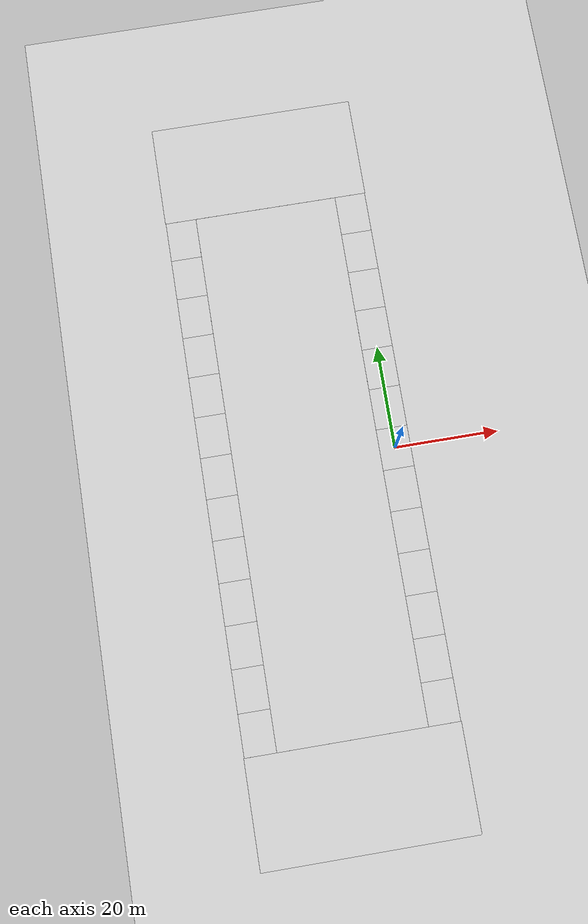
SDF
<sdf version="1.9">
 <world name="road">
  <physics type="ode">
   <max_step_size>0.004</max_step_size>
   <real_time_factor>1.0</real_time_factor>
   <real_time_update_rate>250</real_time_update_rate>
  </physics>
  <plugin name="gz::sim::systems::Physics" filename="gz-sim-physics-system"/>
  <plugin name="gz::sim::systems::UserCommands" filename="gz-sim-user-commands-system"/>
  <plugin name="gz::sim::systems::SceneBroadcaster" filename="gz-sim-scene-broadcaster-system"/>
  <plugin name="gz::sim::systems::Contact" filename="gz-sim-contact-system"/>
  <plugin name="gz::sim::systems::Imu" filename="gz-sim-imu-system"/>
  <plugin name="gz::sim::systems::AirPressure" filename="gz-sim-air-pressure-system"/>
  <plugin name="gz::sim::systems::ApplyLinkWrench" filename="gz-sim-apply-link-wrench-system"/>
  <plugin name="gz::sim::systems::NavSat" filename="gz-sim-navsat-system"/>
  <plugin name="gz::sim::systems::Sensors" filename="gz-sim-sensors-system">
   <render_engine>ogre2</render_engine>
  </plugin>
  <gravity>0 0 -9.8</gravity>
  <magnetic_field>6e-06 2.3e-05 -4.2e-05</magnetic_field>
  <atmosphere type="adiabatic"/>
  <scene>
   <grid>false</grid>
   <ambient>0.4 0.4 0.4 1</ambient>
   <background>0.7 0.7 0.7 1</background>
   <shadows>true</shadows>
  </scene>
  <model name="ground_plane">
   <static>true</static>
   <link name="link">
    <collision name="collision">
     <geometry><plane><normal>0 0 1</normal><size>1 1</size></plane></geometry>
    </collision>
    <visual name="visual">
     <geometry><plane><normal>0 0 1</normal><size>100 200</size></plane></geometry>
     <material>
      <ambient>0.8 0.8 0.8 1</ambient>
      <diffuse>0.8 0.8 0.8 1</diffuse>
      <specular>0.8 0.8 0.8 1</specular>
      <pbr><metal><albedo_map>grass-4k.png</albedo_map><normal_map>grass-4k.png</normal_map></metal></pbr>
     </material>
    </visual>
    <inertial>
     <mass>1</mass>
     <inertia><ixx>1</ixx><ixy>0</ixy><ixz>0</ixz><iyy>1</iyy><iyz>0</iyz><izz>1</izz></inertia>
    </inertial>
   </link>
  </model>
  <model name="road">
   <static>true</static>
   <link name="segment1">
    <visual name="visual">
     <geometry><plane><normal>0 0 1</normal><size>6 8</size></plane></geometry>
     <material>
      <ambient>0.8 0.8 0.8 1</ambient>
      <diffuse>0.8 0.8 0.8 1</diffuse>
      <specular>0.8 0.8 0.8 1</specular>
      <pbr><metal><albedo_map>road.jpg</albedo_map><normal_map>road.jpg</normal_map></metal></pbr>
     </material>
    </visual>
   </link>
   <link name="segment2">
    <visual name="visual">
     <geometry><plane><normal>0 0 1</normal><size>6 8</size></plane></geometry>
     <material>
      <ambient>0.8 0.8 0.8 1</ambient>
      <diffuse>0.8 0.8 0.8 1</diffuse>
      <specular>0.8 0.8 0.8 1</specular>
      <pbr><metal><albedo_map>road.jpg</albedo_map><normal_map>road.jpg</normal_map></metal></pbr>
     </material>
    </visual>
    <pose>0 8 0 0 -0 0</pose>
   </link>
   <link name="segment3">
    <visual name="visual">
     <geometry><plane><normal>0 0 1</normal><size>6 8</size></plane></geometry>
     <material>
      <ambient>0.8 0.8 0.8 1</ambient>
      <diffuse>0.8 0.8 0.8 1</diffuse>
      <specular>0.8 0.8 0.8 1</specular>
      <pbr><metal><albedo_map>road.jpg</albedo_map><normal_map>road.jpg</normal_map></metal></pbr>
     </material>
    </visual>
    <pose>0 -8 0 0 -0 0</pose>
   </link>
   <link name="segment4">
    <visual name="visual">
     <geometry><plane><normal>0 0 1</normal><size>6 8</size></plane></geometry>
     <material>
      <ambient>0.8 0.8 0.8 1</ambient>
      <diffuse>0.8 0.8 0.8 1</diffuse>
      <specular>0.8 0.8 0.8 1</specular>
      <pbr><metal><albedo_map>road.jpg</albedo_map><normal_map>road.jpg</normal_map></metal></pbr>
     </material>
    </visual>
    <pose>0 16 0 0 -0 0</pose>
   </link>
   <link name="segment5">
    <visual name="visual">
     <geometry><plane><normal>0 0 1</normal><size>6 8</size></plane></geometry>
     <material>
      <ambient>0.8 0.8 0.8 1</ambient>
      <diffuse>0.8 0.8 0.8 1</diffuse>
      <specular>0.8 0.8 0.8 1</specular>
      <pbr><metal><albedo_map>road.jpg</albedo_map><normal_map>road.jpg</normal_map></metal></pbr>
     </material>
    </visual>
    <pose>0 -16 0 0 -0 0</pose>
   </link>
   <link name="segment6">
    <visual name="visual">
     <geometry><plane><normal>0 0 1</normal><size>6 8</size></plane></geometry>
     <material>
      <ambient>0.8 0.8 0.8 1</ambient>
      <diffuse>0.8 0.8 0.8 1</diffuse>
      <specular>0.8 0.8 0.8 1</specular>
      <pbr><metal><albedo_map>road.jpg</albedo_map><normal_map>road.jpg</normal_map></metal></pbr>
     </material>
    </visual>
    <pose>0 24 0 0 -0 0</pose>
   </link>
   <link name="segment7">
    <visual name="visual">
     <geometry><plane><normal>0 0 1</normal><size>6 8</size></plane></geometry>
     <material>
      <ambient>0.8 0.8 0.8 1</ambient>
      <diffuse>0.8 0.8 0.8 1</diffuse>
      <specular>0.8 0.8 0.8 1</specular>
      <pbr><metal><albedo_map>road.jpg</albedo_map><normal_map>road.jpg</normal_map></metal></pbr>
     </material>
    </visual>
    <pose>0 -24 0 0 -0 0</pose>
   </link>
   <link name="segment8">
    <visual name="visual">
     <geometry><plane><normal>0 0 1</normal><size>6 8</size></plane></geometry>
     <material>
      <ambient>0.8 0.8 0.8 1</ambient>
      <diffuse>0.8 0.8 0.8 1</diffuse>
      <specular>0.8 0.8 0.8 1</specular>
      <pbr><metal><albedo_map>road.jpg</albedo_map><normal_map>road.jpg</normal_map></metal></pbr>
     </material>
    </visual>
    <pose>0 32 0 0 -0 0</pose>
   </link>
   <link name="segment9">
    <visual name="visual">
     <geometry><plane><normal>0 0 1</normal><size>6 8</size></plane></geometry>
     <material>
      <ambient>0.8 0.8 0.8 1</ambient>
      <diffuse>0.8 0.8 0.8 1</diffuse>
      <specular>0.8 0.8 0.8 1</specular>
      <pbr><metal><albedo_map>road.jpg</albedo_map><normal_map>road.jpg</normal_map></metal></pbr>
     </material>
    </visual>
    <pose>0 -32 0 0 -0 0</pose>
   </link>
   <link name="segment10">
    <visual name="visual">
     <geometry><plane><normal>0 0 1</normal><size>6 8</size></plane></geometry>
     <material>
      <ambient>0.8 0.8 0.8 1</ambient>
      <diffuse>0.8 0.8 0.8 1</diffuse>
      <specular>0.8 0.8 0.8 1</specular>
      <pbr><metal><albedo_map>road.jpg</albedo_map><normal_map>road.jpg</normal_map></metal></pbr>
     </material>
    </visual>
    <pose>0 40 0 0 -0 0</pose>
   </link>
   <link name="segment11">
    <visual name="visual">
     <geometry><plane><normal>0 0 1</normal><size>6 8</size></plane></geometry>
     <material>
      <ambient>0.8 0.8 0.8 1</ambient>
      <diffuse>0.8 0.8 0.8 1</diffuse>
      <specular>0.8 0.8 0.8 1</specular>
      <pbr><metal><albedo_map>road.jpg</albedo_map><normal_map>road.jpg</normal_map></metal></pbr>
     </material>
    </visual>
    <pose>0 -40 0 0 -0 0</pose>
   </link>
   <link name="segment12">
    <visual name="visual">
     <geometry><plane><normal>0 0 1</normal><size>6 8</size></plane></geometry>
     <material>
      <ambient>0.8 0.8 0.8 1</ambient>
      <diffuse>0.8 0.8 0.8 1</diffuse>
      <specular>0.8 0.8 0.8 1</specular>
      <pbr><metal><albedo_map>road.jpg</albedo_map><normal_map>road.jpg</normal_map></metal></pbr>
     </material>
    </visual>
    <pose>0 48 0 0 -0 0</pose>
   </link>
   <link name="segment13">
    <visual name="visual">
     <geometry><plane><normal>0 0 1</normal><size>6 8</size></plane></geometry>
     <material>
      <ambient>0.8 0.8 0.8 1</ambient>
      <diffuse>0.8 0.8 0.8 1</diffuse>
      <specular>0.8 0.8 0.8 1</specular>
      <pbr><metal><albedo_map>road.jpg</albedo_map><normal_map>road.jpg</normal_map></metal></pbr>
     </material>
    </visual>
    <pose>0 -48 0 0 -0 0</pose>
   </link>
   <link name="curve1">
    <visual name="visual">
     <geometry><plane><normal>0 0 1</normal><size>40.2 20</size></plane></geometry>
     <material>
      <ambient>0.8 0.8 0.8 1</ambient>
      <diffuse>0.8 0.8 0.8 1</diffuse>
      <specular>0.8 0.8 0.8 1</specular>
      <pbr><metal><albedo_map>double-curve.png</albedo_map><normal_map>double-curve.png</normal_map></metal></pbr>
     </material>
    </visual>
    <pose>-17 61.9 0 0 -0 0</pose>
   </link>
   <link name="segment101">
    <visual name="visual">
     <geometry><plane><normal>0 0 1</normal><size>6 8</size></plane></geometry>
     <material>
      <ambient>0.8 0.8 0.8 1</ambient>
      <diffuse>0.8 0.8 0.8 1</diffuse>
      <specular>0.8 0.8 0.8 1</specular>
      <pbr><metal><albedo_map>road.jpg</albedo_map><normal_map>road.jpg</normal_map></metal></pbr>
     </material>
    </visual>
    <pose>-34 0 0 0 -0 0</pose>
   </link>
   <link name="segment102">
    <visual name="visual">
     <geometry><plane><normal>0 0 1</normal><size>6 8</size></plane></geometry>
     <material>
      <ambient>0.8 0.8 0.8 1</ambient>
      <diffuse>0.8 0.8 0.8 1</diffuse>
      <specular>0.8 0.8 0.8 1</specular>
      <pbr><metal><albedo_map>road.jpg</albedo_map><normal_map>road.jpg</normal_map></metal></pbr>
     </material>
    </visual>
    <pose>-34 8 0 0 -0 0</pose>
   </link>
   <link name="segment103">
    <visual name="visual">
     <geometry><plane><normal>0 0 1</normal><size>6 8</size></plane></geometry>
     <material>
      <ambient>0.8 0.8 0.8 1</ambient>
      <diffuse>0.8 0.8 0.8 1</diffuse>
      <specular>0.8 0.8 0.8 1</specular>
      <pbr><metal><albedo_map>road.jpg</albedo_map><normal_map>road.jpg</normal_map></metal></pbr>
     </material>
    </visual>
    <pose>-34 -8 0 0 -0 0</pose>
   </link>
   <link name="segment104">
    <visual name="visual">
     <geometry><plane><normal>0 0 1</normal><size>6 8</size></plane></geometry>
     <material>
      <ambient>0.8 0.8 0.8 1</ambient>
      <diffuse>0.8 0.8 0.8 1</diffuse>
      <specular>0.8 0.8 0.8 1</specular>
      <pbr><metal><albedo_map>road.jpg</albedo_map><normal_map>road.jpg</normal_map></metal></pbr>
     </material>
    </visual>
    <pose>-34 16 0 0 -0 0</pose>
   </link>
   <link name="segment105">
    <visual name="visual">
     <geometry><plane><normal>0 0 1</normal><size>6 8</size></plane></geometry>
     <material>
      <ambient>0.8 0.8 0.8 1</ambient>
      <diffuse>0.8 0.8 0.8 1</diffuse>
      <specular>0.8 0.8 0.8 1</specular>
      <pbr><metal><albedo_map>road.jpg</albedo_map><normal_map>road.jpg</normal_map></metal></pbr>
     </material>
    </visual>
    <pose>-34 -16 0 0 -0 0</pose>
   </link>
   <link name="segment106">
    <visual name="visual">
     <geometry><plane><normal>0 0 1</normal><size>6 8</size></plane></geometry>
     <material>
      <ambient>0.8 0.8 0.8 1</ambient>
      <diffuse>0.8 0.8 0.8 1</diffuse>
      <specular>0.8 0.8 0.8 1</specular>
      <pbr><metal><albedo_map>road.jpg</albedo_map><normal_map>road.jpg</normal_map></metal></pbr>
     </material>
    </visual>
    <pose>-34 24 0 0 -0 0</pose>
   </link>
   <link name="segment107">
    <visual name="visual">
     <geometry><plane><normal>0 0 1</normal><size>6 8</size></plane></geometry>
     <material>
      <ambient>0.8 0.8 0.8 1</ambient>
      <diffuse>0.8 0.8 0.8 1</diffuse>
      <specular>0.8 0.8 0.8 1</specular>
      <pbr><metal><albedo_map>road.jpg</albedo_map><normal_map>road.jpg</normal_map></metal></pbr>
     </material>
    </visual>
    <pose>-34 -24 0 0 -0 0</pose>
   </link>
   <link name="segment108">
    <visual name="visual">
     <geometry><plane><normal>0 0 1</normal><size>6 8</size></plane></geometry>
     <material>
      <ambient>0.8 0.8 0.8 1</ambient>
      <diffuse>0.8 0.8 0.8 1</diffuse>
      <specular>0.8 0.8 0.8 1</specular>
      <pbr><metal><albedo_map>road.jpg</albedo_map><normal_map>road.jpg</normal_map></metal></pbr>
     </material>
    </visual>
    <pose>-34 32 0 0 -0 0</pose>
   </link>
   <link name="segment109">
    <visual name="visual">
     <geometry><plane><normal>0 0 1</normal><size>6 8</size></plane></geometry>
     <material>
      <ambient>0.8 0.8 0.8 1</ambient>
      <diffuse>0.8 0.8 0.8 1</diffuse>
      <specular>0.8 0.8 0.8 1</specular>
      <pbr><metal><albedo_map>road.jpg</albedo_map><normal_map>road.jpg</normal_map></metal></pbr>
     </material>
    </visual>
    <pose>-34 -32 0 0 -0 0</pose>
   </link>
   <link name="segmen1t10">
    <visual name="visual">
     <geometry><plane><normal>0 0 1</normal><size>6 8</size></plane></geometry>
     <material>
      <ambient>0.8 0.8 0.8 1</ambient>
      <diffuse>0.8 0.8 0.8 1</diffuse>
      <specular>0.8 0.8 0.8 1</specular>
      <pbr><metal><albedo_map>road.jpg</albedo_map><normal_map>road.jpg</normal_map></metal></pbr>
     </material>
    </visual>
    <pose>-34 40 0 0 -0 0</pose>
   </link>
   <link name="segmen1t11">
    <visual name="visual">
     <geometry><plane><normal>0 0 1</normal><size>6 8</size></plane></geometry>
     <material>
      <ambient>0.8 0.8 0.8 1</ambient>
      <diffuse>0.8 0.8 0.8 1</diffuse>
      <specular>0.8 0.8 0.8 1</specular>
      <pbr><metal><albedo_map>road.jpg</albedo_map><normal_map>road.jpg</normal_map></metal></pbr>
     </material>
    </visual>
    <pose>-34 -40 0 0 -0 0</pose>
   </link>
   <link name="segment112">
    <visual name="visual">
     <geometry><plane><normal>0 0 1</normal><size>6 8</size></plane></geometry>
     <material>
      <ambient>0.8 0.8 0.8 1</ambient>
      <diffuse>0.8 0.8 0.8 1</diffuse>
      <specular>0.8 0.8 0.8 1</specular>
      <pbr><metal><albedo_map>road.jpg</albedo_map><normal_map>road.jpg</normal_map></metal></pbr>
     </material>
    </visual>
    <pose>-34 48 0 0 -0 0</pose>
   </link>
   <link name="segment113">
    <visual name="visual">
     <geometry><plane><normal>0 0 1</normal><size>6 8</size></plane></geometry>
     <material>
      <ambient>0.8 0.8 0.8 1</ambient>
      <diffuse>0.8 0.8 0.8 1</diffuse>
      <specular>0.8 0.8 0.8 1</specular>
      <pbr><metal><albedo_map>road.jpg</albedo_map><normal_map>road.jpg</normal_map></metal></pbr>
     </material>
    </visual>
    <pose>-34 -48 0 0 -0 0</pose>
   </link>
   <link name="curve3">
    <visual name="visual">
     <geometry><plane><normal>0 0 1</normal><size>40.2 20</size></plane></geometry>
     <material>
      <ambient>0.8 0.8 0.8 1</ambient>
      <diffuse>0.8 0.8 0.8 1</diffuse>
      <specular>0.8 0.8 0.8 1</specular>
      <pbr><metal><albedo_map>double-curve.png</albedo_map><normal_map>double-curve.png</normal_map></metal></pbr>
     </material>
    </visual>
    <pose>-17 -61.9 0 0 -0 3.1415</pose>
   </link>
   <pose>0 0 0.01 0 -0 0</pose>
  </model>
  <light name="sunUTC" type="directional">
   <pose>0 0 500 0 -0 0</pose>
   <intensity>1</intensity>
   <direction>0.001 0.625 -0.78</direction>
   <diffuse>0.904 0.904 0.904 1</diffuse>
   <specular>0.271 0.271 0.271 1</specular>
   <attenuation><range>2000</range><linear>0</linear><constant>1</constant><quadratic>0</quadratic></attenuation>
   <spot><inner_angle>0</inner_angle><outer_angle>0</outer_angle><falloff>0</falloff></spot>
  </light>
  <spherical_coordinates>
   <surface_model>EARTH_WGS84</surface_model>
   <world_frame_orientation>ENU</world_frame_orientation>
   <latitude_deg>47.397971057728974</latitude_deg>
   <longitude_deg>8.546163739800146</longitude_deg>
   <elevation>0</elevation>
  </spherical_coordinates>
 </world>
</sdf>
